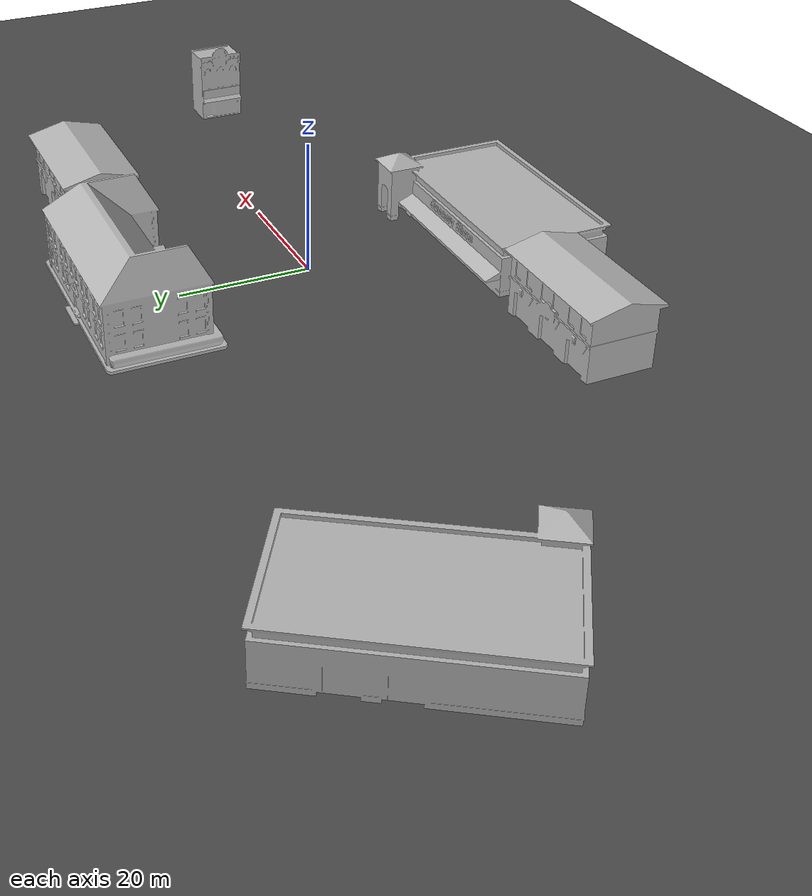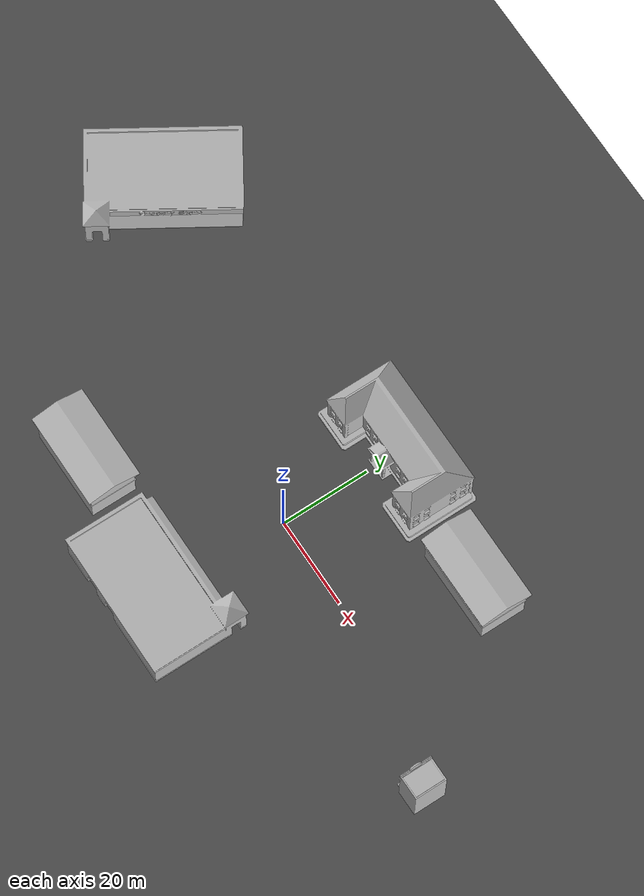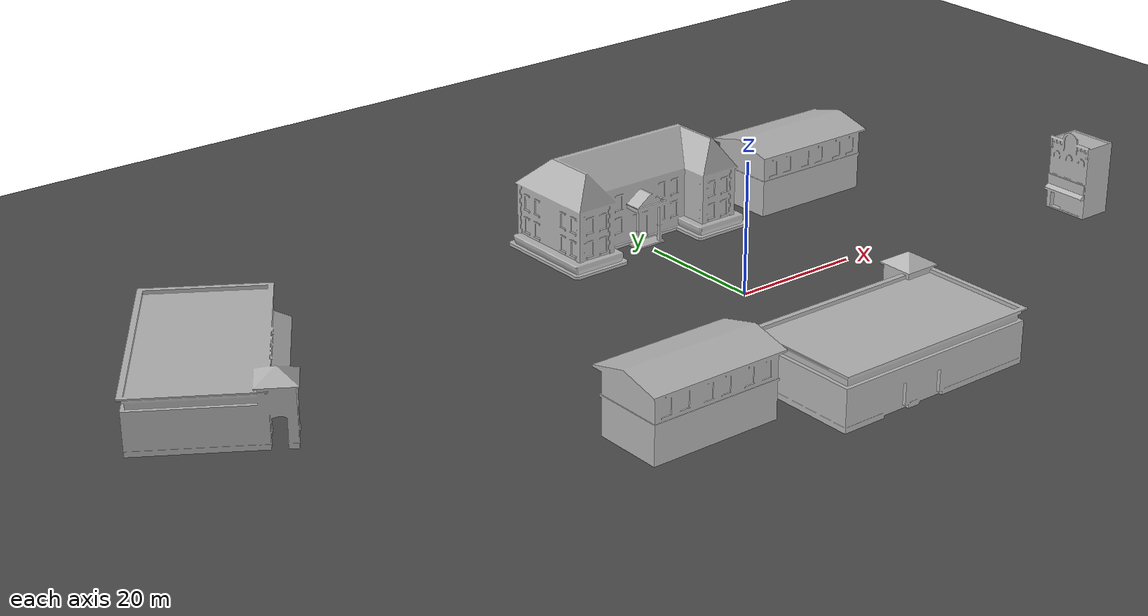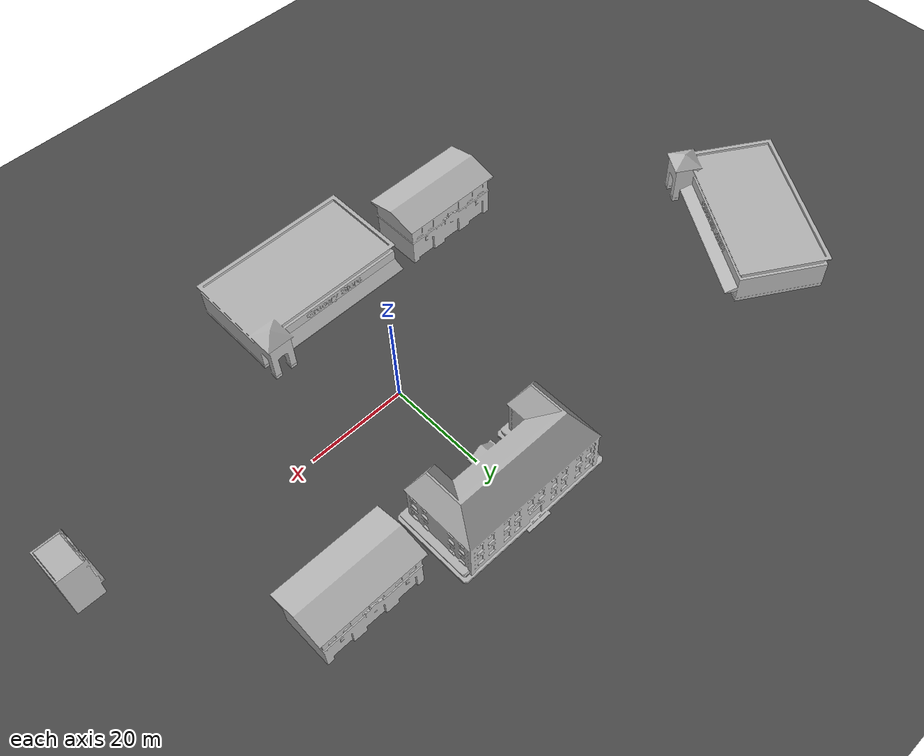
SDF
<sdf version="1.6">
 <world name="default">
  <light name="sun" type="directional">
   <pose>0 0 10 0 -0 0</pose>
   <diffuse>0.8 0.8 0.8 1</diffuse>
   <specular>0.2 0.2 0.2 1</specular>
   <attenuation>
    <range>1000</range>
    <constant>0.9</constant>
    <linear>0.01</linear>
    <quadratic>0.001</quadratic>
   </attenuation>
   <direction>-0.5 0.1 -0.9</direction>
  </light>
  <gravity>0 0 -9.8</gravity>
  <magnetic_field>6e-06 2.3e-05 -4.2e-05</magnetic_field>
  <atmosphere type="adiabatic"/>
  <physics name="default_physics" default="0" type="ode">
   <max_step_size>0.001</max_step_size>
   <real_time_factor>1</real_time_factor>
   <real_time_update_rate>1000</real_time_update_rate>
   <ode><solver><type>quick</type><iters>100</iters></solver></ode>
  </physics>
  <scene><ambient>0.4 0.4 0.4 1</ambient><background>0.7 0.7 0.7 1</background><shadows>1</shadows></scene>
  <spherical_coordinates>
   <surface_model>EARTH_WGS84</surface_model>
   <latitude_deg>10.775435</latitude_deg>
   <longitude_deg>106.659833</longitude_deg>
   <elevation>0.5</elevation>
   <heading_deg>90.0</heading_deg>
  </spherical_coordinates>
  <model name="asphalt_plane">
   <static>1</static>
   <link name="link">
    <collision name="collision"><geometry><box><size>600 600 0.1</size></box></geometry></collision>
    <visual name="visual">
     <cast_shadows>0</cast_shadows>
     <geometry><box><size>600 600 0.1</size></box></geometry>
     <material>
      <script>
       <uri>model://asphalt_plane/materials/scripts</uri>
       <uri>model://asphalt_plane/materials/textures</uri>
       <name>vrc/asphalt</name>
      </script>
     </material>
    </visual>
   </link>
  </model>
  <model name="school">
   <static>1</static>
   <link name="link">
    <collision name="collision">
     <geometry><mesh><uri>model://school/meshes/school.dae</uri></mesh></geometry>
    </collision>
    <visual name="visual"><geometry><mesh><uri>model://school/meshes/school.dae</uri></mesh></geometry></visual>
   </link>
   <pose>0.636377 29.532 0 0 -0 0</pose>
  </model>
  <model name="school_1">
   <static>1</static>
   <link name="link">
    <collision name="collision">
     <geometry><mesh><uri>model://school/meshes/school.dae</uri></mesh></geometry>
    </collision>
    <visual name="visual"><geometry><mesh><uri>model://school/meshes/school.dae</uri></mesh></geometry></visual>
   </link>
   <pose>0.636377 29.532 0 0 -0 0</pose>
  </model>
  <model name="school_2">
   <static>1</static>
   <link name="link">
    <collision name="collision">
     <geometry><mesh><uri>model://school/meshes/school.dae</uri></mesh></geometry>
    </collision>
    <visual name="visual"><geometry><mesh><uri>model://school/meshes/school.dae</uri></mesh></geometry></visual>
   </link>
   <pose>0.636377 29.532 0 0 -0 0</pose>
  </model>
  <model name="school_3">
   <static>1</static>
   <link name="link">
    <collision name="collision">
     <geometry><mesh><uri>model://school/meshes/school.dae</uri></mesh></geometry>
    </collision>
    <visual name="visual"><geometry><mesh><uri>model://school/meshes/school.dae</uri></mesh></geometry></visual>
   </link>
   <pose>0.636377 29.532 0 0 -0 0</pose>
  </model>
  <model name="school_4">
   <static>1</static>
   <link name="link">
    <collision name="collision">
     <geometry><mesh><uri>model://school/meshes/school.dae</uri></mesh></geometry>
    </collision>
    <visual name="visual"><geometry><mesh><uri>model://school/meshes/school.dae</uri></mesh></geometry></visual>
   </link>
   <pose>0.636377 29.532 0 0 -0 0</pose>
  </model>
  <model name="school_5">
   <static>1</static>
   <link name="link">
    <collision name="collision">
     <geometry><mesh><uri>model://school/meshes/school.dae</uri></mesh></geometry>
    </collision>
    <visual name="visual"><geometry><mesh><uri>model://school/meshes/school.dae</uri></mesh></geometry></visual>
   </link>
   <pose>0.636377 29.532 0 0 -0 0</pose>
  </model>
  <model name="school_6">
   <static>1</static>
   <link name="link">
    <collision name="collision">
     <geometry><mesh><uri>model://school/meshes/school.dae</uri></mesh></geometry>
    </collision>
    <visual name="visual"><geometry><mesh><uri>model://school/meshes/school.dae</uri></mesh></geometry></visual>
   </link>
   <pose>0.636377 29.532 0 0 -0 0</pose>
  </model>
  <model name="school_7">
   <static>1</static>
   <link name="link">
    <collision name="collision">
     <geometry><mesh><uri>model://school/meshes/school.dae</uri></mesh></geometry>
    </collision>
    <visual name="visual"><geometry><mesh><uri>model://school/meshes/school.dae</uri></mesh></geometry></visual>
   </link>
   <pose>0.636377 29.532 0 0 -0 0</pose>
  </model>
  <model name="school_8">
   <static>1</static>
   <link name="link">
    <collision name="collision">
     <geometry><mesh><uri>model://school/meshes/school.dae</uri></mesh></geometry>
    </collision>
    <visual name="visual"><geometry><mesh><uri>model://school/meshes/school.dae</uri></mesh></geometry></visual>
   </link>
   <pose>0.636377 29.532 0 0 -0 0</pose>
  </model>
  <model name="school_9">
   <static>1</static>
   <link name="link">
    <collision name="collision">
     <geometry><mesh><uri>model://school/meshes/school.dae</uri></mesh></geometry>
    </collision>
    <visual name="visual"><geometry><mesh><uri>model://school/meshes/school.dae</uri></mesh></geometry></visual>
   </link>
   <pose>0.636377 29.532 0 0 -0 0</pose>
  </model>
  <model name="school_10">
   <static>1</static>
   <link name="link">
    <collision name="collision">
     <geometry><mesh><uri>model://school/meshes/school.dae</uri></mesh></geometry>
    </collision>
    <visual name="visual"><geometry><mesh><uri>model://school/meshes/school.dae</uri></mesh></geometry></visual>
   </link>
   <pose>0.636377 29.532 0 0 -0 0</pose>
  </model>
  <model name="school_11">
   <static>1</static>
   <link name="link">
    <collision name="collision">
     <geometry><mesh><uri>model://school/meshes/school.dae</uri></mesh></geometry>
    </collision>
    <visual name="visual"><geometry><mesh><uri>model://school/meshes/school.dae</uri></mesh></geometry></visual>
   </link>
   <pose>0.636377 29.532 0 0 -0 0</pose>
  </model>
  <model name="grocery_store">
   <static>1</static>
   <link name="link">
    <collision name="collision">
     <pose>0 0 4.04605 0 -0 0</pose>
     <geometry><box><size>32.1985 17.5425 8.09209</size></box></geometry>
    </collision>
    <visual name="visual">
     <pose>0 -1.96155 0 0 -0 0</pose>
     <geometry><mesh><uri>model://grocery_store/meshes/grocery_store.dae</uri></mesh></geometry>
    </visual>
   </link>
   <pose>-2.29865 -30.4508 0 0 -0 0</pose>
  </model>
  <model name="fire_station">
   <static>1</static>
   <link name="link">
    <collision name="main">
     <pose>0 -0.135 5 0 -0 0</pose>
     <geometry><box><size>19.98 9.68 10</size></box></geometry>
    </collision>
    <collision name="front_top">
     <pose>0 4.957 7 0 -0 0</pose>
     <geometry><box><size>20 0.515 6</size></box></geometry>
    </collision>
    <collision name="column_0">
     <pose>9.333 4.957 2 0 -0 0</pose>
     <geometry><box><size>1.315 0.515 4</size></box></geometry>
    </collision>
    <collision name="column_1">
     <pose>3.33 4.957 2 0 -0 0</pose>
     <geometry><box><size>2.63 0.515 4</size></box></geometry>
    </collision>
    <collision name="column_2">
     <pose>-3.33 4.957 2 0 -0 0</pose>
     <geometry><box><size>2.63 0.515 4</size></box></geometry>
    </collision>
    <collision name="column_3">
     <pose>-9.333 4.957 2 0 -0 0</pose>
     <geometry><box><size>1.315 0.515 4</size></box></geometry>
    </collision>
    <collision name="roof_back">
     <pose>0 -2.742 10.467 0.25 -0 0</pose>
     <geometry><box><size>21.47 6.12 0.28</size></box></geometry>
    </collision>
    <collision name="roof_front">
     <pose>0 3.12 10.467 -0.25 0 0</pose>
     <geometry><box><size>21.47 6.12 0.28</size></box></geometry>
    </collision>
    <collision name="roof_base">
     <pose>0 0.188 9.705 0 -0 0</pose>
     <geometry><box><size>21.47 11.86 0.28</size></box></geometry>
    </collision>
    <collision name="roof_filling_0">
     <pose>0 0.188 9.985 0 -0 0</pose>
     <geometry><box><size>21.47 9.53 0.28</size></box></geometry>
    </collision>
    <collision name="roof_filling_1">
     <pose>0 0.188 10.14 0 -0 0</pose>
     <geometry><box><size>21.47 8.41 0.28</size></box></geometry>
    </collision>
    <collision name="roof_filling_2">
     <pose>0 0.188 10.42 0 -0 0</pose>
     <geometry><box><size>21.47 6.25 0.28</size></box></geometry>
    </collision>
    <collision name="roof_filling_3">
     <pose>0 0.188 10.7 0 -0 0</pose>
     <geometry><box><size>21.47 4.05 0.28</size></box></geometry>
    </collision>
    <collision name="roof_filling_4">
     <pose>0 0.188 10.98 0 -0 0</pose>
     <geometry><box><size>21.47 1.83 0.28</size></box></geometry>
    </collision>
    <visual name="visual">
     <geometry><mesh><uri>model://fire_station/meshes/fire_station.dae</uri></mesh></geometry>
    </visual>
   </link>
   <pose>-32.3673 -26.015 0 0 -0 0</pose>
  </model>
  <model name="salon">
   <static>1</static>
   <link name="link">
    <collision name="collision">
     <pose>0 0 5.69469 0 -0 0</pose>
     <geometry><box><size>7.21297 5.37875 11.3894</size></box></geometry>
    </collision>
    <visual name="visual">
     <pose>0 -0.903605 0 0 -0 0</pose>
     <geometry><mesh><uri>model://salon/meshes/salon.dae</uri></mesh></geometry>
    </visual>
   </link>
   <pose>61.4007 -8.08422 0 0 0 -1.5708</pose>
  </model>
  <model name="salon_1">
   <static>1</static>
   <link name="link">
    <collision name="collision">
     <pose>0 0 5.69469 0 -0 0</pose>
     <geometry><box><size>7.21297 5.37875 11.3894</size></box></geometry>
    </collision>
    <visual name="visual">
     <pose>0 -0.903605 0 0 -0 0</pose>
     <geometry><mesh><uri>model://salon/meshes/salon.dae</uri></mesh></geometry>
    </visual>
   </link>
   <pose>61.4007 -8.08422 0 0 0 -1.5708</pose>
  </model>
  <model name="salon_2">
   <static>1</static>
   <link name="link">
    <collision name="collision">
     <pose>0 0 5.69469 0 -0 0</pose>
     <geometry><box><size>7.21297 5.37875 11.3894</size></box></geometry>
    </collision>
    <visual name="visual">
     <pose>0 -0.903605 0 0 -0 0</pose>
     <geometry><mesh><uri>model://salon/meshes/salon.dae</uri></mesh></geometry>
    </visual>
   </link>
   <pose>61.4007 -8.08422 0 0 0 -1.5708</pose>
  </model>
  <model name="salon_3">
   <static>1</static>
   <link name="link">
    <collision name="collision">
     <pose>0 0 5.69469 0 -0 0</pose>
     <geometry><box><size>7.21297 5.37875 11.3894</size></box></geometry>
    </collision>
    <visual name="visual">
     <pose>0 -0.903605 0 0 -0 0</pose>
     <geometry><mesh><uri>model://salon/meshes/salon.dae</uri></mesh></geometry>
    </visual>
   </link>
   <pose>61.4007 -8.08422 0 0 0 -1.5708</pose>
  </model>
  <model name="salon_4">
   <static>1</static>
   <link name="link">
    <collision name="collision">
     <pose>0 0 5.69469 0 -0 0</pose>
     <geometry><box><size>7.21297 5.37875 11.3894</size></box></geometry>
    </collision>
    <visual name="visual">
     <pose>0 -0.903605 0 0 -0 0</pose>
     <geometry><mesh><uri>model://salon/meshes/salon.dae</uri></mesh></geometry>
    </visual>
   </link>
   <pose>61.4007 -8.08422 0 0 0 -1.5708</pose>
  </model>
  <model name="salon_5">
   <static>1</static>
   <link name="link">
    <collision name="collision">
     <pose>0 0 5.69469 0 -0 0</pose>
     <geometry><box><size>7.21297 5.37875 11.3894</size></box></geometry>
    </collision>
    <visual name="visual">
     <pose>0 -0.903605 0 0 -0 0</pose>
     <geometry><mesh><uri>model://salon/meshes/salon.dae</uri></mesh></geometry>
    </visual>
   </link>
   <pose>61.4007 -8.08422 0 0 0 -1.5708</pose>
  </model>
  <model name="salon_6">
   <static>1</static>
   <link name="link">
    <collision name="collision">
     <pose>0 0 5.69469 0 -0 0</pose>
     <geometry><box><size>7.21297 5.37875 11.3894</size></box></geometry>
    </collision>
    <visual name="visual">
     <pose>0 -0.903605 0 0 -0 0</pose>
     <geometry><mesh><uri>model://salon/meshes/salon.dae</uri></mesh></geometry>
    </visual>
   </link>
   <pose>61.4007 -8.08422 0 0 0 -1.5708</pose>
  </model>
  <model name="salon_7">
   <static>1</static>
   <link name="link">
    <collision name="collision">
     <pose>0 0 5.69469 0 -0 0</pose>
     <geometry><box><size>7.21297 5.37875 11.3894</size></box></geometry>
    </collision>
    <visual name="visual">
     <pose>0 -0.903605 0 0 -0 0</pose>
     <geometry><mesh><uri>model://salon/meshes/salon.dae</uri></mesh></geometry>
    </visual>
   </link>
   <pose>61.4007 -8.08422 0 0 0 -1.5708</pose>
  </model>
  <model name="salon_8">
   <static>1</static>
   <link name="link">
    <collision name="collision">
     <pose>0 0 5.69469 0 -0 0</pose>
     <geometry><box><size>7.21297 5.37875 11.3894</size></box></geometry>
    </collision>
    <visual name="visual">
     <pose>0 -0.903605 0 0 -0 0</pose>
     <geometry><mesh><uri>model://salon/meshes/salon.dae</uri></mesh></geometry>
    </visual>
   </link>
   <pose>61.4007 -8.08422 0 0 0 -1.5708</pose>
  </model>
  <model name="salon_9">
   <static>1</static>
   <link name="link">
    <collision name="collision">
     <pose>0 0 5.69469 0 -0 0</pose>
     <geometry><box><size>7.21297 5.37875 11.3894</size></box></geometry>
    </collision>
    <visual name="visual">
     <pose>0 -0.903605 0 0 -0 0</pose>
     <geometry><mesh><uri>model://salon/meshes/salon.dae</uri></mesh></geometry>
    </visual>
   </link>
   <pose>61.4007 -8.08422 0 0 0 -1.5708</pose>
  </model>
  <model name="salon_10">
   <static>1</static>
   <link name="link">
    <collision name="collision">
     <pose>0 0 5.69469 0 -0 0</pose>
     <geometry><box><size>7.21297 5.37875 11.3894</size></box></geometry>
    </collision>
    <visual name="visual">
     <pose>0 -0.903605 0 0 -0 0</pose>
     <geometry><mesh><uri>model://salon/meshes/salon.dae</uri></mesh></geometry>
    </visual>
   </link>
   <pose>61.4007 -8.08422 0 0 0 -1.5708</pose>
  </model>
  <model name="salon_11">
   <static>1</static>
   <link name="link">
    <collision name="collision">
     <pose>0 0 5.69469 0 -0 0</pose>
     <geometry><box><size>7.21297 5.37875 11.3894</size></box></geometry>
    </collision>
    <visual name="visual">
     <pose>0 -0.903605 0 0 -0 0</pose>
     <geometry><mesh><uri>model://salon/meshes/salon.dae</uri></mesh></geometry>
    </visual>
   </link>
   <pose>61.4007 -8.08422 0 0 0 -1.5708</pose>
  </model>
  <model name="salon_12">
   <static>1</static>
   <link name="link">
    <collision name="collision">
     <pose>0 0 5.69469 0 -0 0</pose>
     <geometry><box><size>7.21297 5.37875 11.3894</size></box></geometry>
    </collision>
    <visual name="visual">
     <pose>0 -0.903605 0 0 -0 0</pose>
     <geometry><mesh><uri>model://salon/meshes/salon.dae</uri></mesh></geometry>
    </visual>
   </link>
   <pose>61.4007 -8.08422 0 0 0 -1.5708</pose>
  </model>
  <model name="salon_13">
   <static>1</static>
   <link name="link">
    <collision name="collision">
     <pose>0 0 5.69469 0 -0 0</pose>
     <geometry><box><size>7.21297 5.37875 11.3894</size></box></geometry>
    </collision>
    <visual name="visual">
     <pose>0 -0.903605 0 0 -0 0</pose>
     <geometry><mesh><uri>model://salon/meshes/salon.dae</uri></mesh></geometry>
    </visual>
   </link>
   <pose>61.4007 -8.08422 0 0 0 -1.5708</pose>
  </model>
  <model name="salon_14">
   <static>1</static>
   <link name="link">
    <collision name="collision">
     <pose>0 0 5.69469 0 -0 0</pose>
     <geometry><box><size>7.21297 5.37875 11.3894</size></box></geometry>
    </collision>
    <visual name="visual">
     <pose>0 -0.903605 0 0 -0 0</pose>
     <geometry><mesh><uri>model://salon/meshes/salon.dae</uri></mesh></geometry>
    </visual>
   </link>
   <pose>61.4007 -8.08422 0 0 0 -1.5708</pose>
  </model>
  <model name="salon_15">
   <static>1</static>
   <link name="link">
    <collision name="collision">
     <pose>0 0 5.69469 0 -0 0</pose>
     <geometry><box><size>7.21297 5.37875 11.3894</size></box></geometry>
    </collision>
    <visual name="visual">
     <pose>0 -0.903605 0 0 -0 0</pose>
     <geometry><mesh><uri>model://salon/meshes/salon.dae</uri></mesh></geometry>
    </visual>
   </link>
   <pose>61.4007 -8.08422 0 0 0 -1.5708</pose>
  </model>
  <model name="salon_16">
   <static>1</static>
   <link name="link">
    <collision name="collision">
     <pose>0 0 5.69469 0 -0 0</pose>
     <geometry><box><size>7.21297 5.37875 11.3894</size></box></geometry>
    </collision>
    <visual name="visual">
     <pose>0 -0.903605 0 0 -0 0</pose>
     <geometry><mesh><uri>model://salon/meshes/salon.dae</uri></mesh></geometry>
    </visual>
   </link>
   <pose>61.4007 -8.08422 0 0 0 -1.5708</pose>
  </model>
  <model name="salon_17">
   <static>1</static>
   <link name="link">
    <collision name="collision">
     <pose>0 0 5.69469 0 -0 0</pose>
     <geometry><box><size>7.21297 5.37875 11.3894</size></box></geometry>
    </collision>
    <visual name="visual">
     <pose>0 -0.903605 0 0 -0 0</pose>
     <geometry><mesh><uri>model://salon/meshes/salon.dae</uri></mesh></geometry>
    </visual>
   </link>
   <pose>61.4007 -8.08422 0 0 0 -1.5708</pose>
  </model>
  <model name="salon_18">
   <static>1</static>
   <link name="link">
    <collision name="collision">
     <pose>0 0 5.69469 0 -0 0</pose>
     <geometry><box><size>7.21297 5.37875 11.3894</size></box></geometry>
    </collision>
    <visual name="visual">
     <pose>0 -0.903605 0 0 -0 0</pose>
     <geometry><mesh><uri>model://salon/meshes/salon.dae</uri></mesh></geometry>
    </visual>
   </link>
   <pose>61.4007 -8.08422 0 0 0 -1.5708</pose>
  </model>
  <model name="salon_19">
   <static>1</static>
   <link name="link">
    <collision name="collision">
     <pose>0 0 5.69469 0 -0 0</pose>
     <geometry><box><size>7.21297 5.37875 11.3894</size></box></geometry>
    </collision>
    <visual name="visual">
     <pose>0 -0.903605 0 0 -0 0</pose>
     <geometry><mesh><uri>model://salon/meshes/salon.dae</uri></mesh></geometry>
    </visual>
   </link>
   <pose>61.4007 -8.08422 0 0 0 -1.5708</pose>
  </model>
  <model name="salon_20">
   <static>1</static>
   <link name="link">
    <collision name="collision">
     <pose>0 0 5.69469 0 -0 0</pose>
     <geometry><box><size>7.21297 5.37875 11.3894</size></box></geometry>
    </collision>
    <visual name="visual">
     <pose>0 -0.903605 0 0 -0 0</pose>
     <geometry><mesh><uri>model://salon/meshes/salon.dae</uri></mesh></geometry>
    </visual>
   </link>
   <pose>61.4007 -8.08422 0 0 0 -1.5708</pose>
  </model>
  <model name="salon_21">
   <static>1</static>
   <link name="link">
    <collision name="collision">
     <pose>0 0 5.69469 0 -0 0</pose>
     <geometry><box><size>7.21297 5.37875 11.3894</size></box></geometry>
    </collision>
    <visual name="visual">
     <pose>0 -0.903605 0 0 -0 0</pose>
     <geometry><mesh><uri>model://salon/meshes/salon.dae</uri></mesh></geometry>
    </visual>
   </link>
   <pose>61.4007 -8.08422 0 0 0 -1.5708</pose>
  </model>
  <model name="salon_22">
   <static>1</static>
   <link name="link">
    <collision name="collision">
     <pose>0 0 5.69469 0 -0 0</pose>
     <geometry><box><size>7.21297 5.37875 11.3894</size></box></geometry>
    </collision>
    <visual name="visual">
     <pose>0 -0.903605 0 0 -0 0</pose>
     <geometry><mesh><uri>model://salon/meshes/salon.dae</uri></mesh></geometry>
    </visual>
   </link>
   <pose>61.4007 -8.08422 0 0 0 -1.5708</pose>
  </model>
  <model name="salon_23">
   <static>1</static>
   <link name="link">
    <collision name="collision">
     <pose>0 0 5.69469 0 -0 0</pose>
     <geometry><box><size>7.21297 5.37875 11.3894</size></box></geometry>
    </collision>
    <visual name="visual">
     <pose>0 -0.903605 0 0 -0 0</pose>
     <geometry><mesh><uri>model://salon/meshes/salon.dae</uri></mesh></geometry>
    </visual>
   </link>
   <pose>61.4007 -8.08422 0 0 0 -1.5708</pose>
  </model>
  <model name="salon_24">
   <static>1</static>
   <link name="link">
    <collision name="collision">
     <pose>0 0 5.69469 0 -0 0</pose>
     <geometry><box><size>7.21297 5.37875 11.3894</size></box></geometry>
    </collision>
    <visual name="visual">
     <pose>0 -0.903605 0 0 -0 0</pose>
     <geometry><mesh><uri>model://salon/meshes/salon.dae</uri></mesh></geometry>
    </visual>
   </link>
   <pose>61.4007 -8.08422 0 0 0 -1.5708</pose>
  </model>
  <model name="salon_25">
   <static>1</static>
   <link name="link">
    <collision name="collision">
     <pose>0 0 5.69469 0 -0 0</pose>
     <geometry><box><size>7.21297 5.37875 11.3894</size></box></geometry>
    </collision>
    <visual name="visual">
     <pose>0 -0.903605 0 0 -0 0</pose>
     <geometry><mesh><uri>model://salon/meshes/salon.dae</uri></mesh></geometry>
    </visual>
   </link>
   <pose>61.4007 -8.08422 0 0 0 -1.5708</pose>
  </model>
  <model name="salon_26">
   <static>1</static>
   <link name="link">
    <collision name="collision">
     <pose>0 0 5.69469 0 -0 0</pose>
     <geometry><box><size>7.21297 5.37875 11.3894</size></box></geometry>
    </collision>
    <visual name="visual">
     <pose>0 -0.903605 0 0 -0 0</pose>
     <geometry><mesh><uri>model://salon/meshes/salon.dae</uri></mesh></geometry>
    </visual>
   </link>
   <pose>61.4007 -8.08422 0 0 0 -1.5708</pose>
  </model>
  <model name="salon_27">
   <static>1</static>
   <link name="link">
    <collision name="collision">
     <pose>0 0 5.69469 0 -0 0</pose>
     <geometry><box><size>7.21297 5.37875 11.3894</size></box></geometry>
    </collision>
    <visual name="visual">
     <pose>0 -0.903605 0 0 -0 0</pose>
     <geometry><mesh><uri>model://salon/meshes/salon.dae</uri></mesh></geometry>
    </visual>
   </link>
   <pose>61.4007 -8.08422 0 0 0 -1.5708</pose>
  </model>
  <model name="salon_28">
   <static>1</static>
   <link name="link">
    <collision name="collision">
     <pose>0 0 5.69469 0 -0 0</pose>
     <geometry><box><size>7.21297 5.37875 11.3894</size></box></geometry>
    </collision>
    <visual name="visual">
     <pose>0 -0.903605 0 0 -0 0</pose>
     <geometry><mesh><uri>model://salon/meshes/salon.dae</uri></mesh></geometry>
    </visual>
   </link>
   <pose>61.4007 -8.08422 0 0 0 -1.5708</pose>
  </model>
  <model name="fire_station_0">
   <static>1</static>
   <link name="link">
    <collision name="main">
     <pose>0 -0.135 5 0 -0 0</pose>
     <geometry><box><size>19.98 9.68 10</size></box></geometry>
    </collision>
    <collision name="front_top">
     <pose>0 4.957 7 0 -0 0</pose>
     <geometry><box><size>20 0.515 6</size></box></geometry>
    </collision>
    <collision name="column_0">
     <pose>9.333 4.957 2 0 -0 0</pose>
     <geometry><box><size>1.315 0.515 4</size></box></geometry>
    </collision>
    <collision name="column_1">
     <pose>3.33 4.957 2 0 -0 0</pose>
     <geometry><box><size>2.63 0.515 4</size></box></geometry>
    </collision>
    <collision name="column_2">
     <pose>-3.33 4.957 2 0 -0 0</pose>
     <geometry><box><size>2.63 0.515 4</size></box></geometry>
    </collision>
    <collision name="column_3">
     <pose>-9.333 4.957 2 0 -0 0</pose>
     <geometry><box><size>1.315 0.515 4</size></box></geometry>
    </collision>
    <collision name="roof_back">
     <pose>0 -2.742 10.467 0.25 -0 0</pose>
     <geometry><box><size>21.47 6.12 0.28</size></box></geometry>
    </collision>
    <collision name="roof_front">
     <pose>0 3.12 10.467 -0.25 0 0</pose>
     <geometry><box><size>21.47 6.12 0.28</size></box></geometry>
    </collision>
    <collision name="roof_base">
     <pose>0 0.188 9.705 0 -0 0</pose>
     <geometry><box><size>21.47 11.86 0.28</size></box></geometry>
    </collision>
    <collision name="roof_filling_0">
     <pose>0 0.188 9.985 0 -0 0</pose>
     <geometry><box><size>21.47 9.53 0.28</size></box></geometry>
    </collision>
    <collision name="roof_filling_1">
     <pose>0 0.188 10.14 0 -0 0</pose>
     <geometry><box><size>21.47 8.41 0.28</size></box></geometry>
    </collision>
    <collision name="roof_filling_2">
     <pose>0 0.188 10.42 0 -0 0</pose>
     <geometry><box><size>21.47 6.25 0.28</size></box></geometry>
    </collision>
    <collision name="roof_filling_3">
     <pose>0 0.188 10.7 0 -0 0</pose>
     <geometry><box><size>21.47 4.05 0.28</size></box></geometry>
    </collision>
    <collision name="roof_filling_4">
     <pose>0 0.188 10.98 0 -0 0</pose>
     <geometry><box><size>21.47 1.83 0.28</size></box></geometry>
    </collision>
    <visual name="visual">
     <geometry><mesh><uri>model://fire_station/meshes/fire_station.dae</uri></mesh></geometry>
    </visual>
   </link>
   <pose>31.2423 24.6559 0 0 -0 0</pose>
  </model>
  <model name="fire_station_1">
   <static>1</static>
   <link name="link">
    <collision name="main">
     <pose>0 -0.135 5 0 -0 0</pose>
     <geometry><box><size>19.98 9.68 10</size></box></geometry>
    </collision>
    <collision name="front_top">
     <pose>0 4.957 7 0 -0 0</pose>
     <geometry><box><size>20 0.515 6</size></box></geometry>
    </collision>
    <collision name="column_0">
     <pose>9.333 4.957 2 0 -0 0</pose>
     <geometry><box><size>1.315 0.515 4</size></box></geometry>
    </collision>
    <collision name="column_1">
     <pose>3.33 4.957 2 0 -0 0</pose>
     <geometry><box><size>2.63 0.515 4</size></box></geometry>
    </collision>
    <collision name="column_2">
     <pose>-3.33 4.957 2 0 -0 0</pose>
     <geometry><box><size>2.63 0.515 4</size></box></geometry>
    </collision>
    <collision name="column_3">
     <pose>-9.333 4.957 2 0 -0 0</pose>
     <geometry><box><size>1.315 0.515 4</size></box></geometry>
    </collision>
    <collision name="roof_back">
     <pose>0 -2.742 10.467 0.25 -0 0</pose>
     <geometry><box><size>21.47 6.12 0.28</size></box></geometry>
    </collision>
    <collision name="roof_front">
     <pose>0 3.12 10.467 -0.25 0 0</pose>
     <geometry><box><size>21.47 6.12 0.28</size></box></geometry>
    </collision>
    <collision name="roof_base">
     <pose>0 0.188 9.705 0 -0 0</pose>
     <geometry><box><size>21.47 11.86 0.28</size></box></geometry>
    </collision>
    <collision name="roof_filling_0">
     <pose>0 0.188 9.985 0 -0 0</pose>
     <geometry><box><size>21.47 9.53 0.28</size></box></geometry>
    </collision>
    <collision name="roof_filling_1">
     <pose>0 0.188 10.14 0 -0 0</pose>
     <geometry><box><size>21.47 8.41 0.28</size></box></geometry>
    </collision>
    <collision name="roof_filling_2">
     <pose>0 0.188 10.42 0 -0 0</pose>
     <geometry><box><size>21.47 6.25 0.28</size></box></geometry>
    </collision>
    <collision name="roof_filling_3">
     <pose>0 0.188 10.7 0 -0 0</pose>
     <geometry><box><size>21.47 4.05 0.28</size></box></geometry>
    </collision>
    <collision name="roof_filling_4">
     <pose>0 0.188 10.98 0 -0 0</pose>
     <geometry><box><size>21.47 1.83 0.28</size></box></geometry>
    </collision>
    <visual name="visual">
     <geometry><mesh><uri>model://fire_station/meshes/fire_station.dae</uri></mesh></geometry>
    </visual>
   </link>
   <pose>31.2423 24.6559 0 0 -0 0</pose>
  </model>
  <model name="fire_station_2">
   <static>1</static>
   <link name="link">
    <collision name="main">
     <pose>0 -0.135 5 0 -0 0</pose>
     <geometry><box><size>19.98 9.68 10</size></box></geometry>
    </collision>
    <collision name="front_top">
     <pose>0 4.957 7 0 -0 0</pose>
     <geometry><box><size>20 0.515 6</size></box></geometry>
    </collision>
    <collision name="column_0">
     <pose>9.333 4.957 2 0 -0 0</pose>
     <geometry><box><size>1.315 0.515 4</size></box></geometry>
    </collision>
    <collision name="column_1">
     <pose>3.33 4.957 2 0 -0 0</pose>
     <geometry><box><size>2.63 0.515 4</size></box></geometry>
    </collision>
    <collision name="column_2">
     <pose>-3.33 4.957 2 0 -0 0</pose>
     <geometry><box><size>2.63 0.515 4</size></box></geometry>
    </collision>
    <collision name="column_3">
     <pose>-9.333 4.957 2 0 -0 0</pose>
     <geometry><box><size>1.315 0.515 4</size></box></geometry>
    </collision>
    <collision name="roof_back">
     <pose>0 -2.742 10.467 0.25 -0 0</pose>
     <geometry><box><size>21.47 6.12 0.28</size></box></geometry>
    </collision>
    <collision name="roof_front">
     <pose>0 3.12 10.467 -0.25 0 0</pose>
     <geometry><box><size>21.47 6.12 0.28</size></box></geometry>
    </collision>
    <collision name="roof_base">
     <pose>0 0.188 9.705 0 -0 0</pose>
     <geometry><box><size>21.47 11.86 0.28</size></box></geometry>
    </collision>
    <collision name="roof_filling_0">
     <pose>0 0.188 9.985 0 -0 0</pose>
     <geometry><box><size>21.47 9.53 0.28</size></box></geometry>
    </collision>
    <collision name="roof_filling_1">
     <pose>0 0.188 10.14 0 -0 0</pose>
     <geometry><box><size>21.47 8.41 0.28</size></box></geometry>
    </collision>
    <collision name="roof_filling_2">
     <pose>0 0.188 10.42 0 -0 0</pose>
     <geometry><box><size>21.47 6.25 0.28</size></box></geometry>
    </collision>
    <collision name="roof_filling_3">
     <pose>0 0.188 10.7 0 -0 0</pose>
     <geometry><box><size>21.47 4.05 0.28</size></box></geometry>
    </collision>
    <collision name="roof_filling_4">
     <pose>0 0.188 10.98 0 -0 0</pose>
     <geometry><box><size>21.47 1.83 0.28</size></box></geometry>
    </collision>
    <visual name="visual">
     <geometry><mesh><uri>model://fire_station/meshes/fire_station.dae</uri></mesh></geometry>
    </visual>
   </link>
   <pose>31.2423 24.6559 0 0 -0 0</pose>
  </model>
  <model name="fire_station_3">
   <static>1</static>
   <link name="link">
    <collision name="main">
     <pose>0 -0.135 5 0 -0 0</pose>
     <geometry><box><size>19.98 9.68 10</size></box></geometry>
    </collision>
    <collision name="front_top">
     <pose>0 4.957 7 0 -0 0</pose>
     <geometry><box><size>20 0.515 6</size></box></geometry>
    </collision>
    <collision name="column_0">
     <pose>9.333 4.957 2 0 -0 0</pose>
     <geometry><box><size>1.315 0.515 4</size></box></geometry>
    </collision>
    <collision name="column_1">
     <pose>3.33 4.957 2 0 -0 0</pose>
     <geometry><box><size>2.63 0.515 4</size></box></geometry>
    </collision>
    <collision name="column_2">
     <pose>-3.33 4.957 2 0 -0 0</pose>
     <geometry><box><size>2.63 0.515 4</size></box></geometry>
    </collision>
    <collision name="column_3">
     <pose>-9.333 4.957 2 0 -0 0</pose>
     <geometry><box><size>1.315 0.515 4</size></box></geometry>
    </collision>
    <collision name="roof_back">
     <pose>0 -2.742 10.467 0.25 -0 0</pose>
     <geometry><box><size>21.47 6.12 0.28</size></box></geometry>
    </collision>
    <collision name="roof_front">
     <pose>0 3.12 10.467 -0.25 0 0</pose>
     <geometry><box><size>21.47 6.12 0.28</size></box></geometry>
    </collision>
    <collision name="roof_base">
     <pose>0 0.188 9.705 0 -0 0</pose>
     <geometry><box><size>21.47 11.86 0.28</size></box></geometry>
    </collision>
    <collision name="roof_filling_0">
     <pose>0 0.188 9.985 0 -0 0</pose>
     <geometry><box><size>21.47 9.53 0.28</size></box></geometry>
    </collision>
    <collision name="roof_filling_1">
     <pose>0 0.188 10.14 0 -0 0</pose>
     <geometry><box><size>21.47 8.41 0.28</size></box></geometry>
    </collision>
    <collision name="roof_filling_2">
     <pose>0 0.188 10.42 0 -0 0</pose>
     <geometry><box><size>21.47 6.25 0.28</size></box></geometry>
    </collision>
    <collision name="roof_filling_3">
     <pose>0 0.188 10.7 0 -0 0</pose>
     <geometry><box><size>21.47 4.05 0.28</size></box></geometry>
    </collision>
    <collision name="roof_filling_4">
     <pose>0 0.188 10.98 0 -0 0</pose>
     <geometry><box><size>21.47 1.83 0.28</size></box></geometry>
    </collision>
    <visual name="visual">
     <geometry><mesh><uri>model://fire_station/meshes/fire_station.dae</uri></mesh></geometry>
    </visual>
   </link>
   <pose>31.2423 24.6559 0 0 -0 0</pose>
  </model>
  <model name="fire_station_9">
   <static>1</static>
   <link name="link">
    <collision name="main">
     <pose>0 -0.135 5 0 -0 0</pose>
     <geometry><box><size>19.98 9.68 10</size></box></geometry>
    </collision>
    <collision name="front_top">
     <pose>0 4.957 7 0 -0 0</pose>
     <geometry><box><size>20 0.515 6</size></box></geometry>
    </collision>
    <collision name="column_0">
     <pose>9.333 4.957 2 0 -0 0</pose>
     <geometry><box><size>1.315 0.515 4</size></box></geometry>
    </collision>
    <collision name="column_1">
     <pose>3.33 4.957 2 0 -0 0</pose>
     <geometry><box><size>2.63 0.515 4</size></box></geometry>
    </collision>
    <collision name="column_2">
     <pose>-3.33 4.957 2 0 -0 0</pose>
     <geometry><box><size>2.63 0.515 4</size></box></geometry>
    </collision>
    <collision name="column_3">
     <pose>-9.333 4.957 2 0 -0 0</pose>
     <geometry><box><size>1.315 0.515 4</size></box></geometry>
    </collision>
    <collision name="roof_back">
     <pose>0 -2.742 10.467 0.25 -0 0</pose>
     <geometry><box><size>21.47 6.12 0.28</size></box></geometry>
    </collision>
    <collision name="roof_front">
     <pose>0 3.12 10.467 -0.25 0 0</pose>
     <geometry><box><size>21.47 6.12 0.28</size></box></geometry>
    </collision>
    <collision name="roof_base">
     <pose>0 0.188 9.705 0 -0 0</pose>
     <geometry><box><size>21.47 11.86 0.28</size></box></geometry>
    </collision>
    <collision name="roof_filling_0">
     <pose>0 0.188 9.985 0 -0 0</pose>
     <geometry><box><size>21.47 9.53 0.28</size></box></geometry>
    </collision>
    <collision name="roof_filling_1">
     <pose>0 0.188 10.14 0 -0 0</pose>
     <geometry><box><size>21.47 8.41 0.28</size></box></geometry>
    </collision>
    <collision name="roof_filling_2">
     <pose>0 0.188 10.42 0 -0 0</pose>
     <geometry><box><size>21.47 6.25 0.28</size></box></geometry>
    </collision>
    <collision name="roof_filling_3">
     <pose>0 0.188 10.7 0 -0 0</pose>
     <geometry><box><size>21.47 4.05 0.28</size></box></geometry>
    </collision>
    <collision name="roof_filling_4">
     <pose>0 0.188 10.98 0 -0 0</pose>
     <geometry><box><size>21.47 1.83 0.28</size></box></geometry>
    </collision>
    <visual name="visual">
     <geometry><mesh><uri>model://fire_station/meshes/fire_station.dae</uri></mesh></geometry>
    </visual>
   </link>
   <pose>31.2423 24.6559 0 0 -0 0</pose>
  </model>
  <model name="fire_station_10">
   <static>1</static>
   <link name="link">
    <collision name="main">
     <pose>0 -0.135 5 0 -0 0</pose>
     <geometry><box><size>19.98 9.68 10</size></box></geometry>
    </collision>
    <collision name="front_top">
     <pose>0 4.957 7 0 -0 0</pose>
     <geometry><box><size>20 0.515 6</size></box></geometry>
    </collision>
    <collision name="column_0">
     <pose>9.333 4.957 2 0 -0 0</pose>
     <geometry><box><size>1.315 0.515 4</size></box></geometry>
    </collision>
    <collision name="column_1">
     <pose>3.33 4.957 2 0 -0 0</pose>
     <geometry><box><size>2.63 0.515 4</size></box></geometry>
    </collision>
    <collision name="column_2">
     <pose>-3.33 4.957 2 0 -0 0</pose>
     <geometry><box><size>2.63 0.515 4</size></box></geometry>
    </collision>
    <collision name="column_3">
     <pose>-9.333 4.957 2 0 -0 0</pose>
     <geometry><box><size>1.315 0.515 4</size></box></geometry>
    </collision>
    <collision name="roof_back">
     <pose>0 -2.742 10.467 0.25 -0 0</pose>
     <geometry><box><size>21.47 6.12 0.28</size></box></geometry>
    </collision>
    <collision name="roof_front">
     <pose>0 3.12 10.467 -0.25 0 0</pose>
     <geometry><box><size>21.47 6.12 0.28</size></box></geometry>
    </collision>
    <collision name="roof_base">
     <pose>0 0.188 9.705 0 -0 0</pose>
     <geometry><box><size>21.47 11.86 0.28</size></box></geometry>
    </collision>
    <collision name="roof_filling_0">
     <pose>0 0.188 9.985 0 -0 0</pose>
     <geometry><box><size>21.47 9.53 0.28</size></box></geometry>
    </collision>
    <collision name="roof_filling_1">
     <pose>0 0.188 10.14 0 -0 0</pose>
     <geometry><box><size>21.47 8.41 0.28</size></box></geometry>
    </collision>
    <collision name="roof_filling_2">
     <pose>0 0.188 10.42 0 -0 0</pose>
     <geometry><box><size>21.47 6.25 0.28</size></box></geometry>
    </collision>
    <collision name="roof_filling_3">
     <pose>0 0.188 10.7 0 -0 0</pose>
     <geometry><box><size>21.47 4.05 0.28</size></box></geometry>
    </collision>
    <collision name="roof_filling_4">
     <pose>0 0.188 10.98 0 -0 0</pose>
     <geometry><box><size>21.47 1.83 0.28</size></box></geometry>
    </collision>
    <visual name="visual">
     <geometry><mesh><uri>model://fire_station/meshes/fire_station.dae</uri></mesh></geometry>
    </visual>
   </link>
   <pose>31.2423 24.6559 0 0 -0 0</pose>
  </model>
  <model name="fire_station_4">
   <static>1</static>
   <link name="link">
    <collision name="main">
     <pose>0 -0.135 5 0 -0 0</pose>
     <geometry><box><size>19.98 9.68 10</size></box></geometry>
    </collision>
    <collision name="front_top">
     <pose>0 4.957 7 0 -0 0</pose>
     <geometry><box><size>20 0.515 6</size></box></geometry>
    </collision>
    <collision name="column_0">
     <pose>9.333 4.957 2 0 -0 0</pose>
     <geometry><box><size>1.315 0.515 4</size></box></geometry>
    </collision>
    <collision name="column_1">
     <pose>3.33 4.957 2 0 -0 0</pose>
     <geometry><box><size>2.63 0.515 4</size></box></geometry>
    </collision>
    <collision name="column_2">
     <pose>-3.33 4.957 2 0 -0 0</pose>
     <geometry><box><size>2.63 0.515 4</size></box></geometry>
    </collision>
    <collision name="column_3">
     <pose>-9.333 4.957 2 0 -0 0</pose>
     <geometry><box><size>1.315 0.515 4</size></box></geometry>
    </collision>
    <collision name="roof_back">
     <pose>0 -2.742 10.467 0.25 -0 0</pose>
     <geometry><box><size>21.47 6.12 0.28</size></box></geometry>
    </collision>
    <collision name="roof_front">
     <pose>0 3.12 10.467 -0.25 0 0</pose>
     <geometry><box><size>21.47 6.12 0.28</size></box></geometry>
    </collision>
    <collision name="roof_base">
     <pose>0 0.188 9.705 0 -0 0</pose>
     <geometry><box><size>21.47 11.86 0.28</size></box></geometry>
    </collision>
    <collision name="roof_filling_0">
     <pose>0 0.188 9.985 0 -0 0</pose>
     <geometry><box><size>21.47 9.53 0.28</size></box></geometry>
    </collision>
    <collision name="roof_filling_1">
     <pose>0 0.188 10.14 0 -0 0</pose>
     <geometry><box><size>21.47 8.41 0.28</size></box></geometry>
    </collision>
    <collision name="roof_filling_2">
     <pose>0 0.188 10.42 0 -0 0</pose>
     <geometry><box><size>21.47 6.25 0.28</size></box></geometry>
    </collision>
    <collision name="roof_filling_3">
     <pose>0 0.188 10.7 0 -0 0</pose>
     <geometry><box><size>21.47 4.05 0.28</size></box></geometry>
    </collision>
    <collision name="roof_filling_4">
     <pose>0 0.188 10.98 0 -0 0</pose>
     <geometry><box><size>21.47 1.83 0.28</size></box></geometry>
    </collision>
    <visual name="visual">
     <geometry><mesh><uri>model://fire_station/meshes/fire_station.dae</uri></mesh></geometry>
    </visual>
   </link>
   <pose>31.2423 24.6559 0 0 -0 0</pose>
  </model>
  <model name="fire_station_5">
   <static>1</static>
   <link name="link">
    <collision name="main">
     <pose>0 -0.135 5 0 -0 0</pose>
     <geometry><box><size>19.98 9.68 10</size></box></geometry>
    </collision>
    <collision name="front_top">
     <pose>0 4.957 7 0 -0 0</pose>
     <geometry><box><size>20 0.515 6</size></box></geometry>
    </collision>
    <collision name="column_0">
     <pose>9.333 4.957 2 0 -0 0</pose>
     <geometry><box><size>1.315 0.515 4</size></box></geometry>
    </collision>
    <collision name="column_1">
     <pose>3.33 4.957 2 0 -0 0</pose>
     <geometry><box><size>2.63 0.515 4</size></box></geometry>
    </collision>
    <collision name="column_2">
     <pose>-3.33 4.957 2 0 -0 0</pose>
     <geometry><box><size>2.63 0.515 4</size></box></geometry>
    </collision>
    <collision name="column_3">
     <pose>-9.333 4.957 2 0 -0 0</pose>
     <geometry><box><size>1.315 0.515 4</size></box></geometry>
    </collision>
    <collision name="roof_back">
     <pose>0 -2.742 10.467 0.25 -0 0</pose>
     <geometry><box><size>21.47 6.12 0.28</size></box></geometry>
    </collision>
    <collision name="roof_front">
     <pose>0 3.12 10.467 -0.25 0 0</pose>
     <geometry><box><size>21.47 6.12 0.28</size></box></geometry>
    </collision>
    <collision name="roof_base">
     <pose>0 0.188 9.705 0 -0 0</pose>
     <geometry><box><size>21.47 11.86 0.28</size></box></geometry>
    </collision>
    <collision name="roof_filling_0">
     <pose>0 0.188 9.985 0 -0 0</pose>
     <geometry><box><size>21.47 9.53 0.28</size></box></geometry>
    </collision>
    <collision name="roof_filling_1">
     <pose>0 0.188 10.14 0 -0 0</pose>
     <geometry><box><size>21.47 8.41 0.28</size></box></geometry>
    </collision>
    <collision name="roof_filling_2">
     <pose>0 0.188 10.42 0 -0 0</pose>
     <geometry><box><size>21.47 6.25 0.28</size></box></geometry>
    </collision>
    <collision name="roof_filling_3">
     <pose>0 0.188 10.7 0 -0 0</pose>
     <geometry><box><size>21.47 4.05 0.28</size></box></geometry>
    </collision>
    <collision name="roof_filling_4">
     <pose>0 0.188 10.98 0 -0 0</pose>
     <geometry><box><size>21.47 1.83 0.28</size></box></geometry>
    </collision>
    <visual name="visual">
     <geometry><mesh><uri>model://fire_station/meshes/fire_station.dae</uri></mesh></geometry>
    </visual>
   </link>
   <pose>31.2423 24.6559 0 0 -0 0</pose>
  </model>
  <model name="fire_station_6">
   <static>1</static>
   <link name="link">
    <collision name="main">
     <pose>0 -0.135 5 0 -0 0</pose>
     <geometry><box><size>19.98 9.68 10</size></box></geometry>
    </collision>
    <collision name="front_top">
     <pose>0 4.957 7 0 -0 0</pose>
     <geometry><box><size>20 0.515 6</size></box></geometry>
    </collision>
    <collision name="column_0">
     <pose>9.333 4.957 2 0 -0 0</pose>
     <geometry><box><size>1.315 0.515 4</size></box></geometry>
    </collision>
    <collision name="column_1">
     <pose>3.33 4.957 2 0 -0 0</pose>
     <geometry><box><size>2.63 0.515 4</size></box></geometry>
    </collision>
    <collision name="column_2">
     <pose>-3.33 4.957 2 0 -0 0</pose>
     <geometry><box><size>2.63 0.515 4</size></box></geometry>
    </collision>
    <collision name="column_3">
     <pose>-9.333 4.957 2 0 -0 0</pose>
     <geometry><box><size>1.315 0.515 4</size></box></geometry>
    </collision>
    <collision name="roof_back">
     <pose>0 -2.742 10.467 0.25 -0 0</pose>
     <geometry><box><size>21.47 6.12 0.28</size></box></geometry>
    </collision>
    <collision name="roof_front">
     <pose>0 3.12 10.467 -0.25 0 0</pose>
     <geometry><box><size>21.47 6.12 0.28</size></box></geometry>
    </collision>
    <collision name="roof_base">
     <pose>0 0.188 9.705 0 -0 0</pose>
     <geometry><box><size>21.47 11.86 0.28</size></box></geometry>
    </collision>
    <collision name="roof_filling_0">
     <pose>0 0.188 9.985 0 -0 0</pose>
     <geometry><box><size>21.47 9.53 0.28</size></box></geometry>
    </collision>
    <collision name="roof_filling_1">
     <pose>0 0.188 10.14 0 -0 0</pose>
     <geometry><box><size>21.47 8.41 0.28</size></box></geometry>
    </collision>
    <collision name="roof_filling_2">
     <pose>0 0.188 10.42 0 -0 0</pose>
     <geometry><box><size>21.47 6.25 0.28</size></box></geometry>
    </collision>
    <collision name="roof_filling_3">
     <pose>0 0.188 10.7 0 -0 0</pose>
     <geometry><box><size>21.47 4.05 0.28</size></box></geometry>
    </collision>
    <collision name="roof_filling_4">
     <pose>0 0.188 10.98 0 -0 0</pose>
     <geometry><box><size>21.47 1.83 0.28</size></box></geometry>
    </collision>
    <visual name="visual">
     <geometry><mesh><uri>model://fire_station/meshes/fire_station.dae</uri></mesh></geometry>
    </visual>
   </link>
   <pose>31.2423 24.6559 0 0 -0 0</pose>
  </model>
  <model name="fire_station_7">
   <static>1</static>
   <link name="link">
    <collision name="main">
     <pose>0 -0.135 5 0 -0 0</pose>
     <geometry><box><size>19.98 9.68 10</size></box></geometry>
    </collision>
    <collision name="front_top">
     <pose>0 4.957 7 0 -0 0</pose>
     <geometry><box><size>20 0.515 6</size></box></geometry>
    </collision>
    <collision name="column_0">
     <pose>9.333 4.957 2 0 -0 0</pose>
     <geometry><box><size>1.315 0.515 4</size></box></geometry>
    </collision>
    <collision name="column_1">
     <pose>3.33 4.957 2 0 -0 0</pose>
     <geometry><box><size>2.63 0.515 4</size></box></geometry>
    </collision>
    <collision name="column_2">
     <pose>-3.33 4.957 2 0 -0 0</pose>
     <geometry><box><size>2.63 0.515 4</size></box></geometry>
    </collision>
    <collision name="column_3">
     <pose>-9.333 4.957 2 0 -0 0</pose>
     <geometry><box><size>1.315 0.515 4</size></box></geometry>
    </collision>
    <collision name="roof_back">
     <pose>0 -2.742 10.467 0.25 -0 0</pose>
     <geometry><box><size>21.47 6.12 0.28</size></box></geometry>
    </collision>
    <collision name="roof_front">
     <pose>0 3.12 10.467 -0.25 0 0</pose>
     <geometry><box><size>21.47 6.12 0.28</size></box></geometry>
    </collision>
    <collision name="roof_base">
     <pose>0 0.188 9.705 0 -0 0</pose>
     <geometry><box><size>21.47 11.86 0.28</size></box></geometry>
    </collision>
    <collision name="roof_filling_0">
     <pose>0 0.188 9.985 0 -0 0</pose>
     <geometry><box><size>21.47 9.53 0.28</size></box></geometry>
    </collision>
    <collision name="roof_filling_1">
     <pose>0 0.188 10.14 0 -0 0</pose>
     <geometry><box><size>21.47 8.41 0.28</size></box></geometry>
    </collision>
    <collision name="roof_filling_2">
     <pose>0 0.188 10.42 0 -0 0</pose>
     <geometry><box><size>21.47 6.25 0.28</size></box></geometry>
    </collision>
    <collision name="roof_filling_3">
     <pose>0 0.188 10.7 0 -0 0</pose>
     <geometry><box><size>21.47 4.05 0.28</size></box></geometry>
    </collision>
    <collision name="roof_filling_4">
     <pose>0 0.188 10.98 0 -0 0</pose>
     <geometry><box><size>21.47 1.83 0.28</size></box></geometry>
    </collision>
    <visual name="visual">
     <geometry><mesh><uri>model://fire_station/meshes/fire_station.dae</uri></mesh></geometry>
    </visual>
   </link>
   <pose>31.2423 24.6559 0 0 -0 0</pose>
  </model>
  <model name="fire_station_8">
   <static>1</static>
   <link name="link">
    <collision name="main">
     <pose>0 -0.135 5 0 -0 0</pose>
     <geometry><box><size>19.98 9.68 10</size></box></geometry>
    </collision>
    <collision name="front_top">
     <pose>0 4.957 7 0 -0 0</pose>
     <geometry><box><size>20 0.515 6</size></box></geometry>
    </collision>
    <collision name="column_0">
     <pose>9.333 4.957 2 0 -0 0</pose>
     <geometry><box><size>1.315 0.515 4</size></box></geometry>
    </collision>
    <collision name="column_1">
     <pose>3.33 4.957 2 0 -0 0</pose>
     <geometry><box><size>2.63 0.515 4</size></box></geometry>
    </collision>
    <collision name="column_2">
     <pose>-3.33 4.957 2 0 -0 0</pose>
     <geometry><box><size>2.63 0.515 4</size></box></geometry>
    </collision>
    <collision name="column_3">
     <pose>-9.333 4.957 2 0 -0 0</pose>
     <geometry><box><size>1.315 0.515 4</size></box></geometry>
    </collision>
    <collision name="roof_back">
     <pose>0 -2.742 10.467 0.25 -0 0</pose>
     <geometry><box><size>21.47 6.12 0.28</size></box></geometry>
    </collision>
    <collision name="roof_front">
     <pose>0 3.12 10.467 -0.25 0 0</pose>
     <geometry><box><size>21.47 6.12 0.28</size></box></geometry>
    </collision>
    <collision name="roof_base">
     <pose>0 0.188 9.705 0 -0 0</pose>
     <geometry><box><size>21.47 11.86 0.28</size></box></geometry>
    </collision>
    <collision name="roof_filling_0">
     <pose>0 0.188 9.985 0 -0 0</pose>
     <geometry><box><size>21.47 9.53 0.28</size></box></geometry>
    </collision>
    <collision name="roof_filling_1">
     <pose>0 0.188 10.14 0 -0 0</pose>
     <geometry><box><size>21.47 8.41 0.28</size></box></geometry>
    </collision>
    <collision name="roof_filling_2">
     <pose>0 0.188 10.42 0 -0 0</pose>
     <geometry><box><size>21.47 6.25 0.28</size></box></geometry>
    </collision>
    <collision name="roof_filling_3">
     <pose>0 0.188 10.7 0 -0 0</pose>
     <geometry><box><size>21.47 4.05 0.28</size></box></geometry>
    </collision>
    <collision name="roof_filling_4">
     <pose>0 0.188 10.98 0 -0 0</pose>
     <geometry><box><size>21.47 1.83 0.28</size></box></geometry>
    </collision>
    <visual name="visual">
     <geometry><mesh><uri>model://fire_station/meshes/fire_station.dae</uri></mesh></geometry>
    </visual>
   </link>
   <pose>31.2423 24.6559 0 0 -0 0</pose>
  </model>
  <model name="grocery_store_0">
   <static>1</static>
   <link name="link">
    <collision name="collision">
     <pose>0 0 4.04605 0 -0 0</pose>
     <geometry><box><size>32.1985 17.5425 8.09209</size></box></geometry>
    </collision>
    <visual name="visual">
     <pose>0 -1.96155 0 0 -0 0</pose>
     <geometry><mesh><uri>model://grocery_store/meshes/grocery_store.dae</uri></mesh></geometry>
    </visual>
   </link>
   <pose>-75.3476 20.1331 0 0 0 -2.12899</pose>
  </model>
  <model name="grocery_store_1">
   <static>1</static>
   <link name="link">
    <collision name="collision">
     <pose>0 0 4.04605 0 -0 0</pose>
     <geometry><box><size>32.1985 17.5425 8.09209</size></box></geometry>
    </collision>
    <visual name="visual">
     <pose>0 -1.96155 0 0 -0 0</pose>
     <geometry><mesh><uri>model://grocery_store/meshes/grocery_store.dae</uri></mesh></geometry>
    </visual>
   </link>
   <pose>-75.3476 20.1331 0 0 0 -2.12899</pose>
  </model>
  <model name="grocery_store_2">
   <static>1</static>
   <link name="link">
    <collision name="collision">
     <pose>0 0 4.04605 0 -0 0</pose>
     <geometry><box><size>32.1985 17.5425 8.09209</size></box></geometry>
    </collision>
    <visual name="visual">
     <pose>0 -1.96155 0 0 -0 0</pose>
     <geometry><mesh><uri>model://grocery_store/meshes/grocery_store.dae</uri></mesh></geometry>
    </visual>
   </link>
   <pose>-75.3476 20.1331 0 0 0 -2.12899</pose>
  </model>
  <model name="grocery_store_3">
   <static>1</static>
   <link name="link">
    <collision name="collision">
     <pose>0 0 4.04605 0 -0 0</pose>
     <geometry><box><size>32.1985 17.5425 8.09209</size></box></geometry>
    </collision>
    <visual name="visual">
     <pose>0 -1.96155 0 0 -0 0</pose>
     <geometry><mesh><uri>model://grocery_store/meshes/grocery_store.dae</uri></mesh></geometry>
    </visual>
   </link>
   <pose>-75.3476 20.1331 0 0 0 -2.12899</pose>
  </model>
  <model name="grocery_store_4">
   <static>1</static>
   <link name="link">
    <collision name="collision">
     <pose>0 0 4.04605 0 -0 0</pose>
     <geometry><box><size>32.1985 17.5425 8.09209</size></box></geometry>
    </collision>
    <visual name="visual">
     <pose>0 -1.96155 0 0 -0 0</pose>
     <geometry><mesh><uri>model://grocery_store/meshes/grocery_store.dae</uri></mesh></geometry>
    </visual>
   </link>
   <pose>-75.3476 20.1331 0 0 0 -2.12899</pose>
  </model>
  <model name="grocery_store_5">
   <static>1</static>
   <link name="link">
    <collision name="collision">
     <pose>0 0 4.04605 0 -0 0</pose>
     <geometry><box><size>32.1985 17.5425 8.09209</size></box></geometry>
    </collision>
    <visual name="visual">
     <pose>0 -1.96155 0 0 -0 0</pose>
     <geometry><mesh><uri>model://grocery_store/meshes/grocery_store.dae</uri></mesh></geometry>
    </visual>
   </link>
   <pose>-75.3476 20.1331 0 0 0 -2.12899</pose>
  </model>
  <model name="grocery_store_6">
   <static>1</static>
   <link name="link">
    <collision name="collision">
     <pose>0 0 4.04605 0 -0 0</pose>
     <geometry><box><size>32.1985 17.5425 8.09209</size></box></geometry>
    </collision>
    <visual name="visual">
     <pose>0 -1.96155 0 0 -0 0</pose>
     <geometry><mesh><uri>model://grocery_store/meshes/grocery_store.dae</uri></mesh></geometry>
    </visual>
   </link>
   <pose>-75.3476 20.1331 0 0 0 -2.12899</pose>
  </model>
  <model name="grocery_store_7">
   <static>1</static>
   <link name="link">
    <collision name="collision">
     <pose>0 0 4.04605 0 -0 0</pose>
     <geometry><box><size>32.1985 17.5425 8.09209</size></box></geometry>
    </collision>
    <visual name="visual">
     <pose>0 -1.96155 0 0 -0 0</pose>
     <geometry><mesh><uri>model://grocery_store/meshes/grocery_store.dae</uri></mesh></geometry>
    </visual>
   </link>
   <pose>-75.3476 20.1331 0 0 0 -2.12899</pose>
  </model>
  <model name="grocery_store_8">
   <static>1</static>
   <link name="link">
    <collision name="collision">
     <pose>0 0 4.04605 0 -0 0</pose>
     <geometry><box><size>32.1985 17.5425 8.09209</size></box></geometry>
    </collision>
    <visual name="visual">
     <pose>0 -1.96155 0 0 -0 0</pose>
     <geometry><mesh><uri>model://grocery_store/meshes/grocery_store.dae</uri></mesh></geometry>
    </visual>
   </link>
   <pose>-75.3476 20.1331 0 0 0 -2.12899</pose>
  </model>
  <model name="grocery_store_9">
   <static>1</static>
   <link name="link">
    <collision name="collision">
     <pose>0 0 4.04605 0 -0 0</pose>
     <geometry><box><size>32.1985 17.5425 8.09209</size></box></geometry>
    </collision>
    <visual name="visual">
     <pose>0 -1.96155 0 0 -0 0</pose>
     <geometry><mesh><uri>model://grocery_store/meshes/grocery_store.dae</uri></mesh></geometry>
    </visual>
   </link>
   <pose>-75.3476 20.1331 0 0 0 -2.12899</pose>
  </model>
  <model name="grocery_store_10">
   <static>1</static>
   <link name="link">
    <collision name="collision">
     <pose>0 0 4.04605 0 -0 0</pose>
     <geometry><box><size>32.1985 17.5425 8.09209</size></box></geometry>
    </collision>
    <visual name="visual">
     <pose>0 -1.96155 0 0 -0 0</pose>
     <geometry><mesh><uri>model://grocery_store/meshes/grocery_store.dae</uri></mesh></geometry>
    </visual>
   </link>
   <pose>-75.3476 20.1331 0 0 0 -2.12899</pose>
  </model>
  <model name="grocery_store_11">
   <static>1</static>
   <link name="link">
    <collision name="collision">
     <pose>0 0 4.04605 0 -0 0</pose>
     <geometry><box><size>32.1985 17.5425 8.09209</size></box></geometry>
    </collision>
    <visual name="visual">
     <pose>0 -1.96155 0 0 -0 0</pose>
     <geometry><mesh><uri>model://grocery_store/meshes/grocery_store.dae</uri></mesh></geometry>
    </visual>
   </link>
   <pose>-75.3476 20.1331 0 0 0 -2.12899</pose>
  </model>
  <model name="grocery_store_12">
   <static>1</static>
   <link name="link">
    <collision name="collision">
     <pose>0 0 4.04605 0 -0 0</pose>
     <geometry><box><size>32.1985 17.5425 8.09209</size></box></geometry>
    </collision>
    <visual name="visual">
     <pose>0 -1.96155 0 0 -0 0</pose>
     <geometry><mesh><uri>model://grocery_store/meshes/grocery_store.dae</uri></mesh></geometry>
    </visual>
   </link>
   <pose>-75.3476 20.1331 0 0 0 -2.12899</pose>
  </model>
  <model name="grocery_store_13">
   <static>1</static>
   <link name="link">
    <collision name="collision">
     <pose>0 0 4.04605 0 -0 0</pose>
     <geometry><box><size>32.1985 17.5425 8.09209</size></box></geometry>
    </collision>
    <visual name="visual">
     <pose>0 -1.96155 0 0 -0 0</pose>
     <geometry><mesh><uri>model://grocery_store/meshes/grocery_store.dae</uri></mesh></geometry>
    </visual>
   </link>
   <pose>-75.3476 20.1331 0 0 0 -2.12899</pose>
  </model>
  <model name="grocery_store_14">
   <static>1</static>
   <link name="link">
    <collision name="collision">
     <pose>0 0 4.04605 0 -0 0</pose>
     <geometry><box><size>32.1985 17.5425 8.09209</size></box></geometry>
    </collision>
    <visual name="visual">
     <pose>0 -1.96155 0 0 -0 0</pose>
     <geometry><mesh><uri>model://grocery_store/meshes/grocery_store.dae</uri></mesh></geometry>
    </visual>
   </link>
   <pose>-75.3476 20.1331 0 0 0 -2.12899</pose>
  </model>
  <model name="grocery_store_15">
   <static>1</static>
   <link name="link">
    <collision name="collision">
     <pose>0 0 4.04605 0 -0 0</pose>
     <geometry><box><size>32.1985 17.5425 8.09209</size></box></geometry>
    </collision>
    <visual name="visual">
     <pose>0 -1.96155 0 0 -0 0</pose>
     <geometry><mesh><uri>model://grocery_store/meshes/grocery_store.dae</uri></mesh></geometry>
    </visual>
   </link>
   <pose>-75.3476 20.1331 0 0 0 -2.12899</pose>
  </model>
  <model name="grocery_store_16">
   <static>1</static>
   <link name="link">
    <collision name="collision">
     <pose>0 0 4.04605 0 -0 0</pose>
     <geometry><box><size>32.1985 17.5425 8.09209</size></box></geometry>
    </collision>
    <visual name="visual">
     <pose>0 -1.96155 0 0 -0 0</pose>
     <geometry><mesh><uri>model://grocery_store/meshes/grocery_store.dae</uri></mesh></geometry>
    </visual>
   </link>
   <pose>-75.3476 20.1331 0 0 0 -2.12899</pose>
  </model>
  <model name="grocery_store_17">
   <static>1</static>
   <link name="link">
    <collision name="collision">
     <pose>0 0 4.04605 0 -0 0</pose>
     <geometry><box><size>32.1985 17.5425 8.09209</size></box></geometry>
    </collision>
    <visual name="visual">
     <pose>0 -1.96155 0 0 -0 0</pose>
     <geometry><mesh><uri>model://grocery_store/meshes/grocery_store.dae</uri></mesh></geometry>
    </visual>
   </link>
   <pose>-75.3476 20.1331 0 0 0 -2.12899</pose>
  </model>
  <model name="grocery_store_18">
   <static>1</static>
   <link name="link">
    <collision name="collision">
     <pose>0 0 4.04605 0 -0 0</pose>
     <geometry><box><size>32.1985 17.5425 8.09209</size></box></geometry>
    </collision>
    <visual name="visual">
     <pose>0 -1.96155 0 0 -0 0</pose>
     <geometry><mesh><uri>model://grocery_store/meshes/grocery_store.dae</uri></mesh></geometry>
    </visual>
   </link>
   <pose>-75.3476 20.1331 0 0 0 -2.12899</pose>
  </model>
  <model name="grocery_store_19">
   <static>1</static>
   <link name="link">
    <collision name="collision">
     <pose>0 0 4.04605 0 -0 0</pose>
     <geometry><box><size>32.1985 17.5425 8.09209</size></box></geometry>
    </collision>
    <visual name="visual">
     <pose>0 -1.96155 0 0 -0 0</pose>
     <geometry><mesh><uri>model://grocery_store/meshes/grocery_store.dae</uri></mesh></geometry>
    </visual>
   </link>
   <pose>-75.3476 20.1331 0 0 0 -2.12899</pose>
  </model>
 </world>
</sdf>
